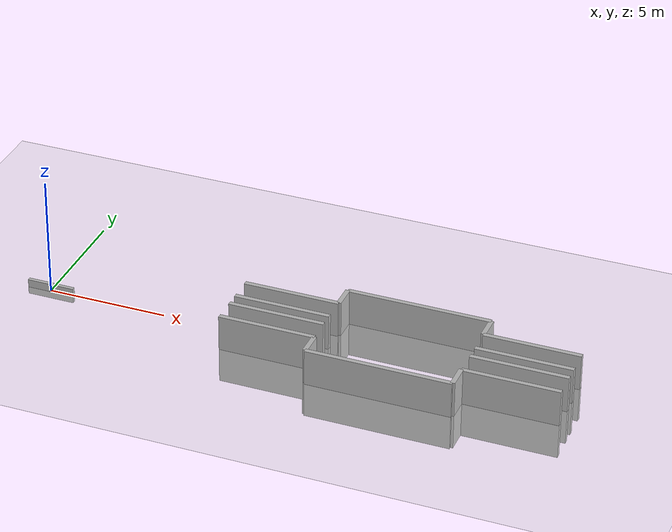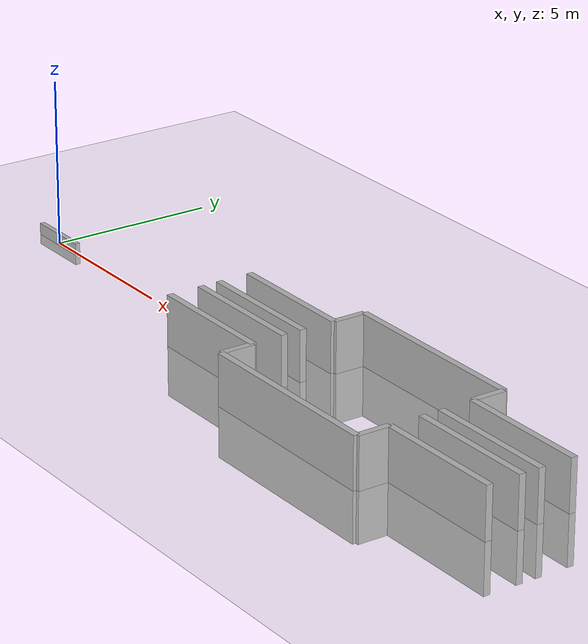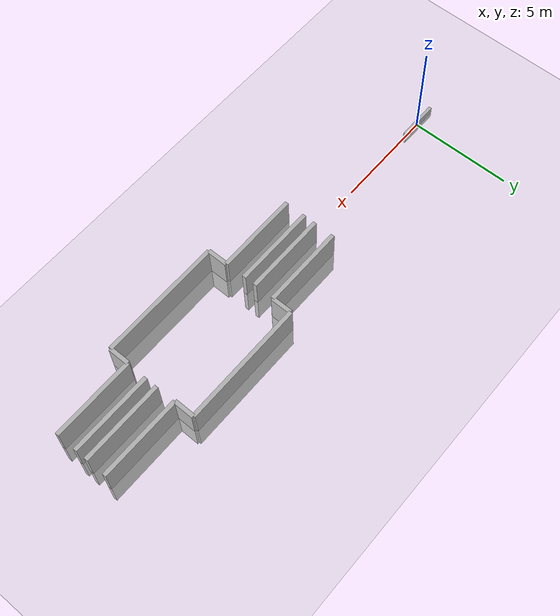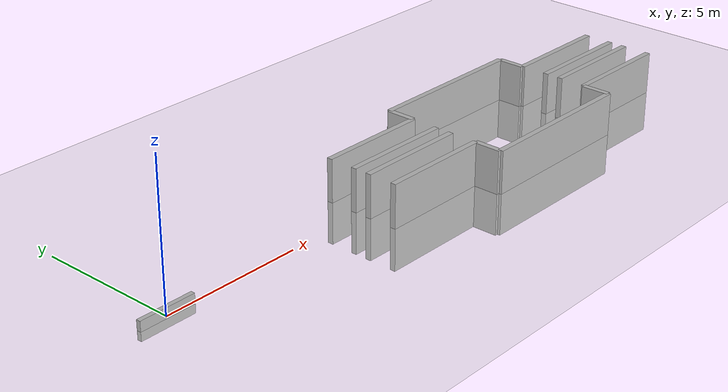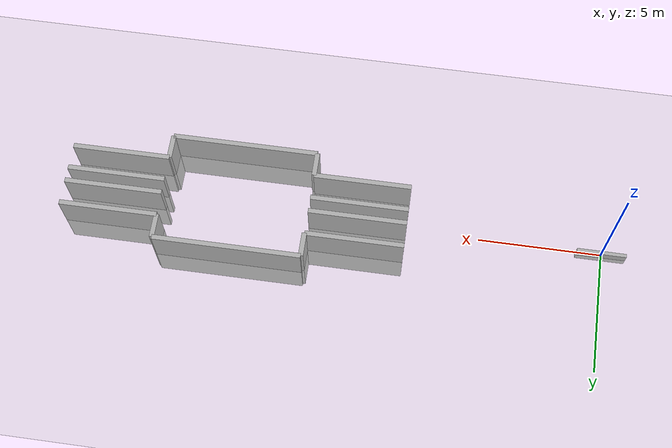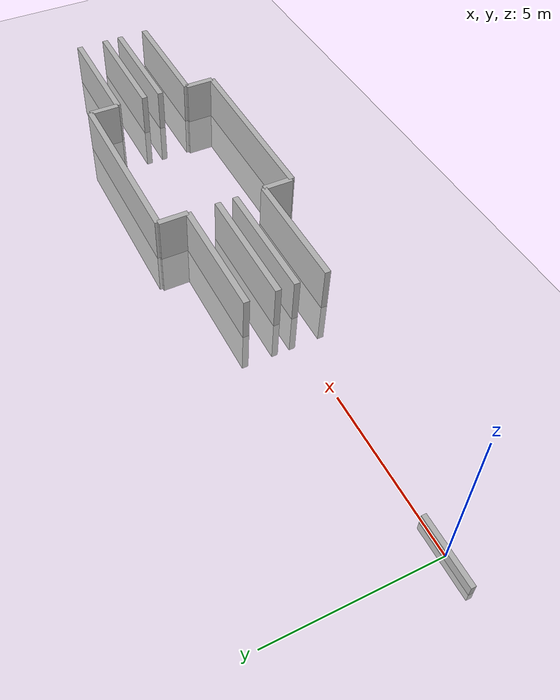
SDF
<?xml version="1.0" ?>
<sdf version='1.4'>
  <world name='default'>

    <physics type='ode'>
      <max_step_size>0.001</max_step_size>
      <real_time_factor>1</real_time_factor>
      <real_time_update_rate>1000</real_time_update_rate>
      <magnetic_field>34 0 -36</magnetic_field>
      <gravity>0 0 -9.8</gravity>
    </physics>

    <spherical_coordinates>
      <surface_model>EARTH_WGS84</surface_model>
      <latitude_deg>0</latitude_deg>
      <longitude_deg>0</longitude_deg>
      <elevation>0</elevation>
      <heading_deg>0</heading_deg>
    </spherical_coordinates>

    <!-- A global light source -->
   <scene>
      <sky>
        <clouds>
          <speed>12</speed>
        </clouds>
      </sky>
   </scene>

   <include>
     <uri>model://sun</uri>
   </include>

    <!-- A ground plane -->
    <include>
      <uri>model://ground_plane</uri>
    </include>

    <!-- A paltform for drone with manipulator to take off -->
    <model name="take off platorm">
      <static>true</static>
      <link name="link">
        <collision name="collision">
          <geometry>
            <box>
              <size>2 0.15 0.65</size>
            </box>
          </geometry>
        </collision>
        <visual name="visual">
          <geometry>
            <box>
              <size>2 0.15 0.65</size>
            </box>
          </geometry>
        </visual>
      </link>
      <pose>0 0 0 0 0 0</pose>
    </model>

    <!-- Some walls on the plane -->
    <model name="wall_1">
      <static>true</static>
      <link name="link">
        <collision name="collision">
          <geometry>
            <box>
              <size>4 0.2 3</size>
            </box>
          </geometry>
        </collision>
        <visual name="visual">
          <geometry>
            <box>
              <size>4 0.2 3</size>
            </box>
          </geometry>
        </visual>
      </link>
      <pose>10 0.3 0 0 0 0</pose>
    </model>

    <model name="wall_2">
      <static>true</static>
      <link name="link">
        <collision name="collision">
          <geometry>
            <box>
              <size>4 0.2 3</size>
            </box>
          </geometry>
        </collision>
        <visual name="visual">
          <geometry>
            <box>
              <size>4 0.2 3</size>
            </box>
          </geometry>
        </visual>
      </link>
      <pose>10 -0.3 0 0 0 0</pose>
    </model>

    <model name="wall_3">
      <static>true</static>
      <link name="link">
        <collision name="collision">
          <geometry>
            <box>
              <size>4 0.2 3</size>
            </box>
          </geometry>
        </collision>
        <visual name="visual">
          <geometry>
            <box>
              <size>4 0.2 3</size>
            </box>
          </geometry>
        </visual>
      </link>
      <pose>10 1.3 0 0 0 0</pose>
    </model>

    <model name="wall_4">
      <static>true</static>
      <link name="link">
        <collision name="collision">
          <geometry>
            <box>
              <size>4 0.2 3</size>
            </box>
          </geometry>
        </collision>
        <visual name="visual">
          <geometry>
            <box>
              <size>4 0.2 3</size>
            </box>
          </geometry>
        </visual>
      </link>
      <pose>10 -1.3 0 0 0 0</pose>
    </model>

    <model name="wall_5">
      <static>true</static>
      <link name="link">
        <collision name="collision">
          <geometry>
            <box>
              <size>1 0.2 3</size>
            </box>
          </geometry>
        </collision>
        <visual name="visual">
          <geometry>
            <box>
              <size>1 0.2 3</size>
            </box>
          </geometry>
        </visual>
      </link>
      <pose>12 1.8 0 0 0 1.5708</pose>
    </model>

    <model name="wall_6">
      <static>true</static>
      <link name="link">
        <collision name="collision">
          <geometry>
            <box>
              <size>1 0.2 3</size>
            </box>
          </geometry>
        </collision>
        <visual name="visual">
          <geometry>
            <box>
              <size>1 0.2 3</size>
            </box>
          </geometry>
        </visual>
      </link>
      <pose>12 -1.8 0 0 0 -1.5708</pose>
    </model>

    <model name="wall_7">
      <static>true</static>
      <link name="link">
        <collision name="collision">
          <geometry>
            <box>
              <size>6 0.2 3</size>
            </box>
          </geometry>
        </collision>
        <visual name="visual">
          <geometry>
            <box>
              <size>6 0.2 3</size>
            </box>
          </geometry>
        </visual>
      </link>
      <pose>15 2.3 0 0 0 0</pose>
    </model>

    <model name="wall_8">
      <static>true</static>
      <link name="link">
        <collision name="collision">
          <geometry>
            <box>
              <size>6 0.2 3</size>
            </box>
          </geometry>
        </collision>
        <visual name="visual">
          <geometry>
            <box>
              <size>6 0.2 3</size>
            </box>
          </geometry>
        </visual>
      </link>
      <pose>15 -2.3 0 0 0 0</pose>
    </model>

    <model name="wall_9">
      <static>true</static>
      <link name="link">
        <collision name="collision">
          <geometry>
            <box>
              <size>4 0.2 3</size>
            </box>
          </geometry>
        </collision>
        <visual name="visual">
          <geometry>
            <box>
              <size>4 0.2 3</size>
            </box>
          </geometry>
        </visual>
      </link>
      <pose>20 0.3 0 0 0 0</pose>
    </model>

    <model name="wall_10">
      <static>true</static>
      <link name="link">
        <collision name="collision">
          <geometry>
            <box>
              <size>4 0.2 3</size>
            </box>
          </geometry>
        </collision>
        <visual name="visual">
          <geometry>
            <box>
              <size>4 0.2 3</size>
            </box>
          </geometry>
        </visual>
      </link>
      <pose>20 -0.3 0 0 0 0</pose>
    </model>

    <model name="wall_11">
      <static>true</static>
      <link name="link">
        <collision name="collision">
          <geometry>
            <box>
              <size>4 0.2 3</size>
            </box>
          </geometry>
        </collision>
        <visual name="visual">
          <geometry>
            <box>
              <size>4 0.2 3</size>
            </box>
          </geometry>
        </visual>
      </link>
      <pose>20 1.3 0 0 0 0</pose>
    </model>

    <model name="wall_12">
      <static>true</static>
      <link name="link">
        <collision name="collision">
          <geometry>
            <box>
              <size>4 0.2 3</size>
            </box>
          </geometry>
        </collision>
        <visual name="visual">
          <geometry>
            <box>
              <size>4 0.2 3</size>
            </box>
          </geometry>
        </visual>
      </link>
      <pose>20 -1.3 0 0 0 0</pose>
    </model>

    <model name="wall_13">
      <static>true</static>
      <link name="link">
        <collision name="collision">
          <geometry>
            <box>
              <size>1 0.2 3</size>
            </box>
          </geometry>
        </collision>
        <visual name="visual">
          <geometry>
            <box>
              <size>1 0.2 3</size>
            </box>
          </geometry>
        </visual>
      </link>
      <pose>18 1.8 0 0 0 1.5708</pose>
    </model>

    <model name="wall_14">
      <static>true</static>
      <link name="link">
        <collision name="collision">
          <geometry>
            <box>
              <size>1 0.2 3</size>
            </box>
          </geometry>
        </collision>
        <visual name="visual">
          <geometry>
            <box>
              <size>1 0.2 3</size>
            </box>
          </geometry>
        </visual>
      </link>
      <pose>18 -1.8 0 0 0 -1.5708</pose>
    </model>

    <!-- World plugin: Link attacher -->
    <plugin name="link_attacher_plugin" filename="libgazebo_ros_link_attacher.so">
    </plugin>

  </world>
</sdf>
